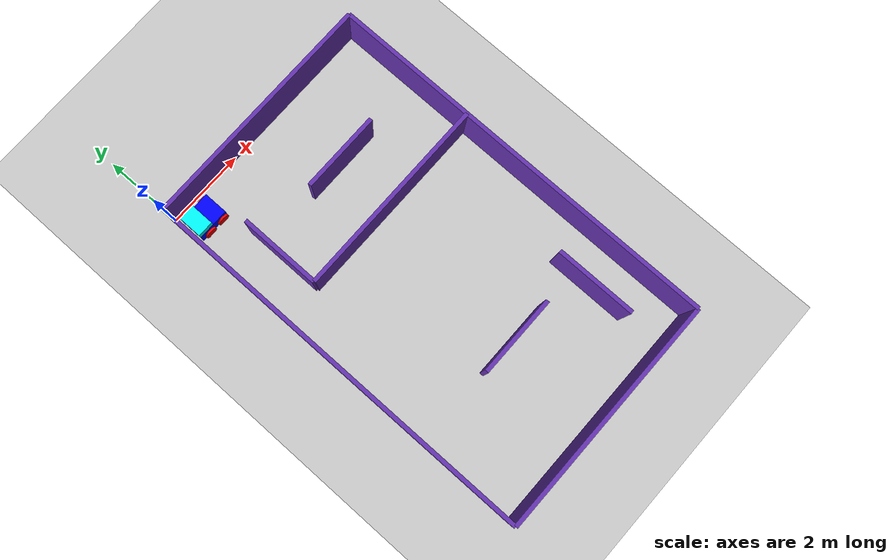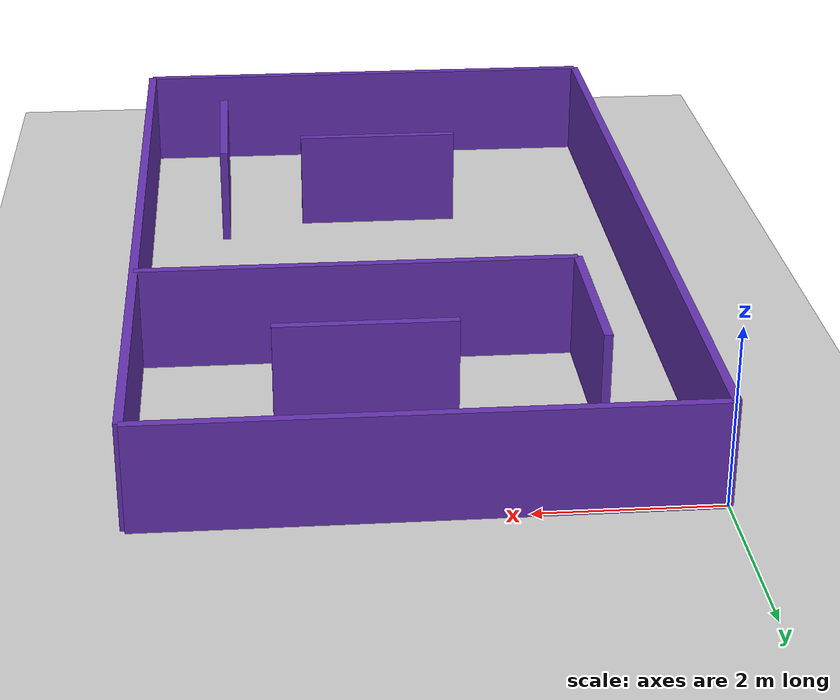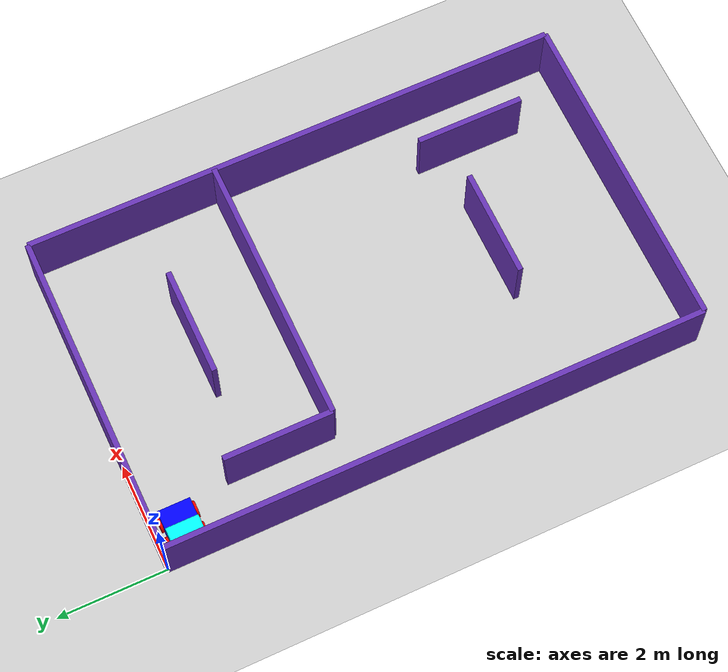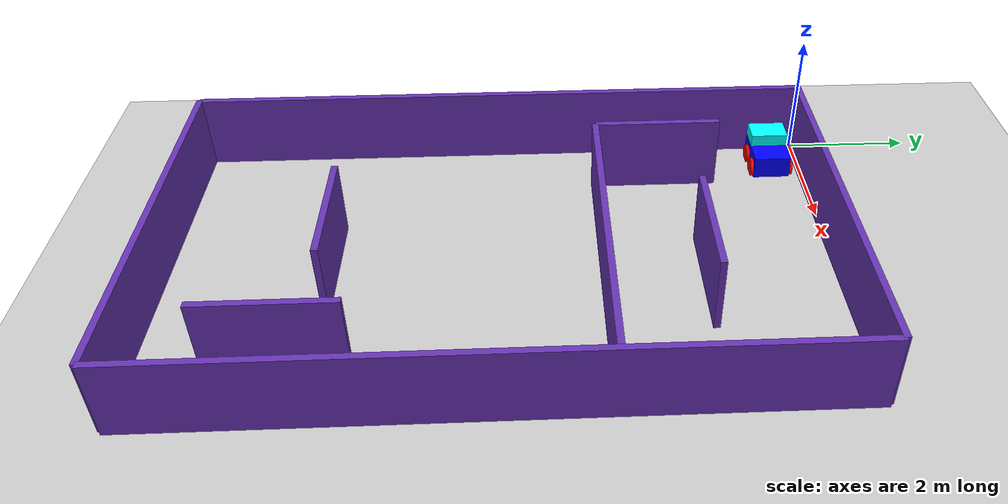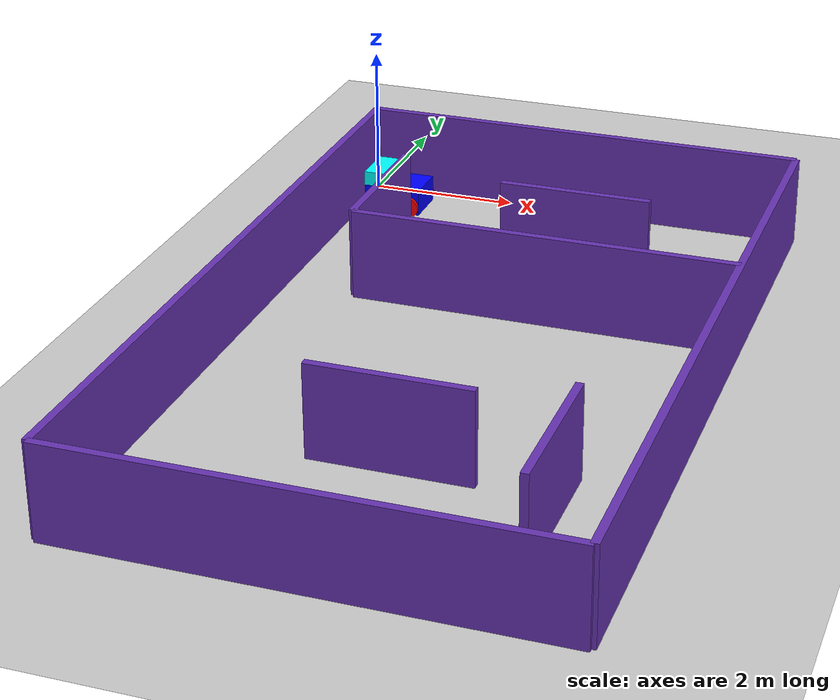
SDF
<sdf version="1.8">
 <world name="mwafy_world">
  <physics name="whatever" type="ignored">
   <max_step_size>0.001</max_step_size>
   <real_time_factor>1.0</real_time_factor>
  </physics>
  <plugin filename="libignition-gazebo-physics-system.so" name="ignition::gazebo::systems::Physics"/>
  <plugin filename="libignition-gazebo-user-commands-system.so" name="ignition::gazebo::systems::UserCommands"/>
  <plugin filename="libignition-gazebo-scene-broadcaster-system.so" name="ignition::gazebo::systems::SceneBroadcaster"/>
  <plugin filename="libignition-gazebo-imu-system.so" name="ignition::gazebo::systems::Imu"/>
  <plugin filename="libignition-gazebo-sensors-system.so" name="ignition::gazebo::systems::Sensors">
   <render_engine>ogre2</render_engine>
  </plugin>
  <light type="directional" name="sun">
   <pose>0 0 10 0 0 0</pose>
   <diffuse>0.8 0.8 0.8 1</diffuse>
   <specular>0.2 0.2 0.2 1</specular>
   <attenuation>
    <range>1000</range>
    <constant>0.9</constant>
    <linear>0.01</linear>
    <quadratic>0.001</quadratic>
   </attenuation>
   <direction>-0.5 0.1 -0.9</direction>
  </light>
  <include><uri>./maze/1.sdf</uri><name>wall_1</name><pose>0 -5 0.6 0 0 -1.5707</pose></include>
  <include><uri>./maze/7.sdf</uri><name>wall_7</name><pose>1.0 -2.5 0.6 0 0 -1.5707</pose></include>
  <include><uri>./maze/8.sdf</uri><name>wall_8</name><pose>3.5 -3.5 0.6 0 0 0</pose></include>
  <include><uri>./maze/1.sdf</uri><name>wall_9</name><pose>6 -5 0.6 0 0 -1.5707</pose></include>
  <include><uri>./maze/9.sdf</uri><name>wall_10</name><pose>3 0 0.6 0 0 0</pose></include>
  <include><uri>./maze/9.sdf</uri><name>wall_11</name><pose>3 -10 0.6 0 0 0</pose></include>
  <include><uri>./maze/7.sdf</uri><name>wall_14</name><pose>3 -7.5 0.6 0 0 0</pose></include>
  <include><uri>./maze/7.sdf</uri><name>wall_22</name><pose>3.5 -2 0.6 0 0 0</pose></include>
  <include><uri>./maze/7.sdf</uri><name>wall_20</name><pose>5 -8.0 0.6 0 0 -1.5707</pose></include>
  <model name="ground_plane">
   <static>true</static>
   <link name="ground">
    <collision name="collision"><geometry><plane><normal>0 0 1</normal></plane></geometry></collision>
    <visual name="visual">
     <geometry><plane><normal>0 0 1</normal><size>100 100</size></plane></geometry>
     <material>
      <ambient>0.8 0.8 0.8 1</ambient>
      <diffuse>0.8 0.8 0.8 1</diffuse>
      <specular>0.8 0.8 0.8 1</specular>
     </material>
    </visual>
   </link>
  </model>
  <model name="mwafy_robot" canonical_link="chassis">
   <pose relative_to="world">0.5 -0.5 0 0 0 0</pose>
   <link name="chassis">
    <pose relative_to="__model__">0 0 0.15 0 0 0</pose>
    <visual name="visual">
     <geometry><box><size>0.8 0.6 0.4</size></box></geometry>
     <material>
      <ambient>0.0 0.0 1.0 1</ambient>
      <diffuse>0.0 0.0 1.0 1</diffuse>
      <specular>0.0 0.0 1.0 1</specular>
     </material>
    </visual>
    <collision name="collision"><geometry><box><size>0.8 0.6 0.4</size></box></geometry></collision>
    <inertial>
     <mass>1.14395</mass>
     <inertia><ixx>0.0433</ixx><ixy>0</ixy><ixz>0</ixz><iyy>0.0667</iyy><iyz>0</iyz><izz>0.0833</izz></inertia>
    </inertial>
    <sensor name="imu_sensor" type="imu">
     <always_on>1</always_on>
     <update_rate>1</update_rate>
     <visualize>false</visualize>
     <topic>imu</topic>
    </sensor>
    <sensor name="gpu_lidar" type="gpu_lidar">
     <pose relative_to="lidar_frame">0 0 0 0 0 0</pose>
     <topic>lidar</topic>
     <update_rate>10</update_rate>
     <ray>
      <scan>
       <horizontal>
        <samples>640</samples>
        <resolution>1</resolution>
        <min_angle>-1.396263</min_angle>
        <max_angle>1.396263</max_angle>
       </horizontal>
       <vertical>
        <samples>1</samples>
        <resolution>0.01</resolution>
        <min_angle>0</min_angle>
        <max_angle>0</max_angle>
       </vertical>
      </scan>
      <range><min>0.08</min><max>10.0</max><resolution>0.01</resolution></range>
     </ray>
     <always_on>1</always_on>
     <visualize>true</visualize>
    </sensor>
   </link>
   <frame name="lidar_frame" attached_to="chassis"><pose>0.8 0 0.5 0 0 0</pose></frame>
   <link name="square">
    <pose relative_to="chassis">-0.2 0 0.3 0 0 0</pose>
    <visual name="visual">
     <geometry><box><size>0.4 0.6 0.2</size></box></geometry>
     <material>
      <ambient>1.0 0.5 1.0 1</ambient>
      <diffuse>0.0 1.0 1.0 1</diffuse>
      <specular>0.5 0.0 0.0 1</specular>
     </material>
    </visual>
    <collision name="collision"><geometry><box><size>0.4 0.6 0.2</size></box></geometry></collision>
    <inertial>
     <mass>1.14395</mass>
     <inertia><ixx>0.0333</ixx><ixy>0</ixy><ixz>0</ixz><iyy>0.0167</iyy><iyz>0</iyz><izz>0.0433</izz></inertia>
    </inertial>
   </link>
   <joint name="fixed_joint" type="fixed"><parent>chassis</parent><child>square</child></joint>
   <link name="left_wheel">
    <pose relative_to="chassis">0.25 0.3 -0.05 1.5707 0 0</pose>
    <inertial>
     <mass>1</mass>
     <inertia><ixx>0.043333</ixx><ixy>0</ixy><ixz>0</ixz><iyy>0.043333</iyy><iyz>0</iyz><izz>0.08</izz></inertia>
    </inertial>
    <visual name="visual">
     <geometry><cylinder><radius>0.15</radius><length>0.1</length></cylinder></geometry>
     <material>
      <ambient>1.0 0.0 0.0 1</ambient>
      <diffuse>1.0 0.0 0.0 1</diffuse>
      <specular>1.0 0.0 0.0 1</specular>
     </material>
    </visual>
    <collision name="collision">
     <geometry><cylinder><radius>0.15</radius><length>0.1</length></cylinder></geometry>
    </collision>
   </link>
   <joint name="left_wheel_joint" type="revolute">
    <pose relative_to="left_wheel"/>
    <parent>chassis</parent>
    <child>left_wheel</child>
    <axis>
     <xyz expressed_in="__model__">0 1 0</xyz>
     <limit><lower>-1.79769e+308</lower><upper>1.79769e+308</upper></limit>
    </axis>
   </joint>
   <link name="left_wheel_1">
    <pose relative_to="chassis">-0.15 0.3 -0.05 1.5707 0 0</pose>
    <inertial>
     <mass>1</mass>
     <inertia><ixx>0.043333</ixx><ixy>0</ixy><ixz>0</ixz><iyy>0.043333</iyy><iyz>0</iyz><izz>0.08</izz></inertia>
    </inertial>
    <visual name="visual">
     <geometry><cylinder><radius>0.15</radius><length>0.1</length></cylinder></geometry>
     <material>
      <ambient>1.0 0.0 0.0 1</ambient>
      <diffuse>1.0 0.0 0.0 1</diffuse>
      <specular>1.0 0.0 0.0 1</specular>
     </material>
    </visual>
    <collision name="collision">
     <geometry><cylinder><radius>0.15</radius><length>0.1</length></cylinder></geometry>
    </collision>
   </link>
   <joint name="left_wheel_1_joint" type="revolute">
    <pose relative_to="left_wheel_1"/>
    <parent>chassis</parent>
    <child>left_wheel_1</child>
    <axis>
     <xyz expressed_in="__model__">0 1 0</xyz>
     <limit><lower>-1.79769e+308</lower><upper>1.79769e+308</upper></limit>
    </axis>
   </joint>
   <link name="right_wheel">
    <pose relative_to="chassis">0.25 -0.3 -0.05 1.5707 0 0</pose>
    <inertial>
     <mass>1</mass>
     <inertia><ixx>0.043333</ixx><ixy>0</ixy><ixz>0</ixz><iyy>0.043333</iyy><iyz>0</iyz><izz>0.08</izz></inertia>
    </inertial>
    <visual name="visual">
     <geometry><cylinder><radius>0.15</radius><length>0.1</length></cylinder></geometry>
     <material>
      <ambient>1.0 0.0 0.0 1</ambient>
      <diffuse>1.0 0.0 0.0 1</diffuse>
      <specular>1.0 0.0 0.0 1</specular>
     </material>
    </visual>
    <collision name="collision">
     <geometry><cylinder><radius>0.15</radius><length>0.1</length></cylinder></geometry>
    </collision>
   </link>
   <joint name="right_wheel_joint" type="revolute">
    <pose relative_to="right_wheel"/>
    <parent>chassis</parent>
    <child>right_wheel</child>
    <axis>
     <xyz expressed_in="__model__">0 1 0</xyz>
     <limit><lower>-1.79769e+308</lower><upper>1.79769e+308</upper></limit>
    </axis>
   </joint>
   <link name="right_wheel_1">
    <pose relative_to="chassis">-0.15 -0.3 -0.05 1.5707 0 0</pose>
    <inertial>
     <mass>1</mass>
     <inertia><ixx>0.043333</ixx><ixy>0</ixy><ixz>0</ixz><iyy>0.043333</iyy><iyz>0</iyz><izz>0.08</izz></inertia>
    </inertial>
    <visual name="visual">
     <geometry><cylinder><radius>0.15</radius><length>0.1</length></cylinder></geometry>
     <material>
      <ambient>1.0 0.0 0.0 1</ambient>
      <diffuse>1.0 0.0 0.0 1</diffuse>
      <specular>1.0 0.0 0.0 1</specular>
     </material>
    </visual>
    <collision name="collision">
     <geometry><cylinder><radius>0.15</radius><length>0.1</length></cylinder></geometry>
    </collision>
   </link>
   <joint name="right_wheel_1_joint" type="revolute">
    <pose relative_to="right_wheel_1"/>
    <parent>chassis</parent>
    <child>right_wheel_1</child>
    <axis>
     <xyz expressed_in="__model__">0 1 0</xyz>
     <limit><lower>-1.79769e+308</lower><upper>1.79769e+308</upper></limit>
    </axis>
   </joint>
   <plugin filename="libignition-gazebo-diff-drive-system.so" name="ignition::gazebo::systems::DiffDrive">
    <left_joint>left_wheel_1_joint</left_joint>
    <right_joint>right_wheel_1_joint</right_joint>
    <wheel_separation>0.6</wheel_separation>
    <wheel_radius>0.15</wheel_radius>
    <odom_publish_frequency>1</odom_publish_frequency>
    <topic>cmd_vel</topic>
   </plugin>
   <plugin filename="libignition-gazebo-triggered-publisher-system.so" name="ignition::gazebo::systems::TriggeredPublisher">
    <input type="ignition.msgs.Int32" topic="/keyboard/keypress"><match field="data">87</match></input>
    <output type="ignition.msgs.Twist" topic="/cmd_vel">linear: {x: 0.5}, angular: {z: 0.0}</output>
   </plugin>
   <plugin filename="libignition-gazebo-triggered-publisher-system.so" name="ignition::gazebo::systems::TriggeredPublisher">
    <input type="ignition.msgs.Int32" topic="/keyboard/keypress"><match field="data">65</match></input>
    <output type="ignition.msgs.Twist" topic="/cmd_vel">linear: {x: 0.0}, angular: {z: 0.5}</output>
   </plugin>
   <plugin filename="libignition-gazebo-triggered-publisher-system.so" name="ignition::gazebo::systems::TriggeredPublisher">
    <input type="ignition.msgs.Int32" topic="/keyboard/keypress"><match field="data">83</match></input>
    <output type="ignition.msgs.Twist" topic="/cmd_vel">linear: {x: -0.5}, angular: {z: 0.0}</output>
   </plugin>
   <plugin filename="libignition-gazebo-triggered-publisher-system.so" name="ignition::gazebo::systems::TriggeredPublisher">
    <input type="ignition.msgs.Int32" topic="/keyboard/keypress"><match field="data">68</match></input>
    <output type="ignition.msgs.Twist" topic="/cmd_vel">linear: {x: 0.0}, angular: {z: -0.5}</output>
   </plugin>
   <plugin filename="libignition-gazebo-triggered-publisher-system.so" name="ignition::gazebo::systems::TriggeredPublisher">
    <input type="ignition.msgs.Int32" topic="/keyboard/keypress"><match field="data">70</match></input>
    <output type="ignition.msgs.Twist" topic="/cmd_vel">linear: {x: 0.0}, angular: {z: 0.0}</output>
   </plugin>
  </model>
 </world>
</sdf>

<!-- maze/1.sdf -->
<sdf version="1.8">
  <model name="wall">
    <static>true</static>
    <link name="wall_link">
      <collision name="collision">
        <geometry>
          <box>
            <size>10.0 0.1 1.5</size>
          </box>
        </geometry>
      </collision>

      <visual name="visual">
        <geometry>
          <box>
            <size>10.0 0.1 1.2</size>
          </box>
        </geometry>
        <material>
          <ambient>0.4 0.2 0.7 1</ambient>
          <diffuse>0.4 0.2 0.7 1</diffuse>
          <specular>0.4 0.2 0.7 1</specular>
        </material>
      </visual>

      <inertial>
        <mass>10.0</mass>
        <inertia>
          <ixx>0.1</ixx>
          <iyy>0.1</iyy>
          <izz>0.1</izz>
        </inertia>
      </inertial>
    </link>
  </model>
</sdf>

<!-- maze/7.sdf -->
=
<sdf version="1.8">
  <model name="wall">
    <static>true</static>
    <link name="wall_link">
      <collision name="collision">
        <geometry>
          <box>
            <size>2.0 0.1 1.2</size>
          </box>
        </geometry>
      </collision>

      <visual name="visual">
        <geometry>
          <box>
            <size>2.0 0.1 1.2</size>
          </box>
        </geometry>
        <material>
          <ambient>0.4 0.2 0.7 1</ambient>
          <diffuse>0.4 0.2 0.7 1</diffuse>
          <specular>0.4 0.2 0.7 1</specular>
        </material>
      </visual>

      <inertial>
        <mass>10.0</mass>
        <inertia>
          <ixx>0.1</ixx>
          <iyy>0.1</iyy>
          <izz>0.1</izz>
        </inertia>
      </inertial>
    </link>
  </model>
</sdf>

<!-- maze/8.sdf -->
=
<sdf version="1.8">
  <model name="wall">
    <static>true</static>
    <link name="wall_link">
      <collision name="collision">
        <geometry>
          <box>
            <size>5.0 0.1 1.2</size>
          </box>
        </geometry>
      </collision>

      <visual name="visual">
        <geometry>
          <box>

            <size>5.0 0.1 1.2</size>
          </box>
        </geometry>
        <material>
          <ambient>0.4 0.2 0.7 1</ambient>
          <diffuse>0.4 0.2 0.7 1</diffuse>
          <specular>0.4 0.2 0.7 1</specular>
        </material>
      </visual>

      <inertial>
        <mass>10.0</mass>
        <inertia>
          <ixx>0.1</ixx>
          <iyy>0.1</iyy>
          <izz>0.1</izz>
        </inertia>
      </inertial>
    </link>
  </model>
</sdf>

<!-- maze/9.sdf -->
<sdf version="1.8">
  <model name="wall">
    <static>true</static>
    <link name="wall_link">
      <collision name="collision">
        <geometry>
          <box>
            <size>6.0 0.1 1.5</size>
          </box>
        </geometry>
      </collision>

      <visual name="visual">
        <geometry>
          <box>
            <size>6.0 0.1 1.2</size>
          </box>
        </geometry>
        <material>
          <ambient>0.4 0.2 0.7 1</ambient>
          <diffuse>0.4 0.2 0.7 1</diffuse>
          <specular>0.4 0.2 0.7 1</specular>
        </material>
      </visual>

      <inertial>
        <mass>10.0</mass>
        <inertia>
          <ixx>0.1</ixx>
          <iyy>0.1</iyy>
          <izz>0.1</izz>
        </inertia>
      </inertial>
    </link>
  </model>
</sdf>
